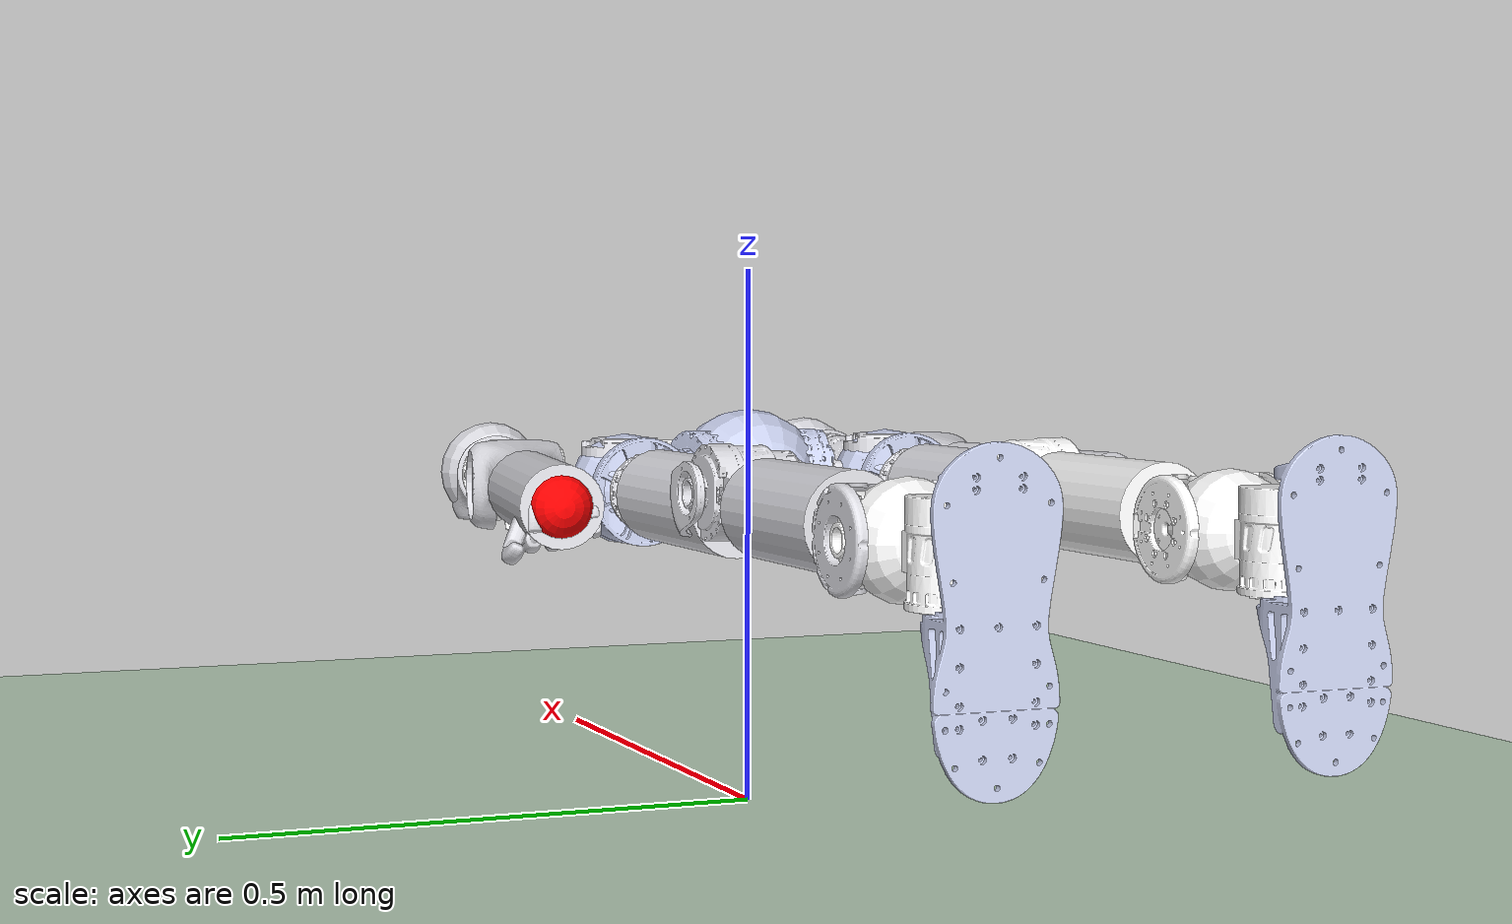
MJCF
<mujoco model="phybot_c2">
  <compiler angle="radian" meshdir="meshes" autolimits="true"/>
  <option timestep="0.002" iterations='10' solver='PGS' gravity='0 0 -9.81'>
  </option>
  <size njmax="500" nconmax="100" />
  <default>
      <geom  condim='4' solref='0.001 2' friction='1.0 0.5 0.5'/>
      <equality solref='0.001 2'/>
  </default>
  <visual>
      <quality shadowsize='4096'/>
      <map force="0.1" zfar="30" znear='0.05'/>
      <rgba haze="0.15 0.25 0.35 1"/>
      <global offwidth="2560" offheight="1440" elevation="-20" azimuth="120"/>
  </visual>
  <default>
      <default class="phybot_c2">
          <joint damping="1" armature="0.1"/>
          <default class="visual">
              <geom type="mesh" contype="0" conaffinity="0" group="2" />
          </default>
          <default class="collision">
              <geom group="3" mass="0" density="0" friction="1.0 0.5 0.5" />
              <default class="base_collision">
                  <geom type="capsule" size=".014" />
          </default>
          </default>
          <site size="0.001" rgba="0.5 0.5 0.5 0.3" group="4"/>
      </default>
  </default>
  <asset>
      <texture type="skybox" builtin="gradient" rgb1=".3 .5 .7" rgb2="0 0 0" width="32" height="512"/>
      <texture name="body" type="cube" builtin="flat" mark="cross" width="128" height="128" rgb1="0.8 0.6 0.4" rgb2="0.8 0.6 0.4" markrgb="1 1 1" random="0.01"/>
      <material name="body" texture="body" texuniform="true" rgba="0.8 0.6 .4 1"/>
      <texture name="grid" type="2d" builtin="checker" width="512" height="512" rgb1=".1 .2 .3" rgb2=".2 .3 .4"/>
      <material name="grid" texture="grid" texrepeat="1 1" texuniform="true" reflectance="0.02"/>
  </asset>
  <asset>
    <mesh name="base_link" file="base_link.STL"/>
    <mesh name="left_hip_pitch" file="left_hip_pitch.STL"/>
    <mesh name="left_hip_roll" file="left_hip_roll.STL"/>
    <mesh name="left_hip_yaw" file="left_hip_yaw.STL"/>
    <mesh name="left_knee" file="left_knee.STL"/>
    <mesh name="left_ankle_pitch" file="left_ankle_pitch.STL"/>
    <mesh name="left_ankle_roll" file="left_ankle_roll.STL"/>
    <mesh name="right_hip_pitch" file="right_hip_pitch.STL"/>
    <mesh name="right_hip_roll" file="right_hip_roll.STL"/>
    <mesh name="right_hip_yaw" file="right_hip_yaw.STL"/>
    <mesh name="right_knee" file="right_knee.STL"/>
    <mesh name="right_ankle_pitch" file="right_ankle_pitch.STL"/>
    <mesh name="right_ankle_roll" file="right_ankle_roll.STL"/>
    <mesh name="waist_yaw" file="waist_yaw.STL"/>
    <mesh name="torso" file="torso.STL"/>
    <mesh name="neck_yaw" file="neck_yaw.STL"/>
    <mesh name="neck_pitch" file="neck_pitch.STL"/>
    <mesh name="left_shoulder_pitch" file="left_shoulder_pitch.STL"/>
    <mesh name="left_shoulder_roll" file="left_shoulder_roll.STL"/>
    <mesh name="left_shoulder_yaw" file="left_shoulder_yaw.STL"/>
    <mesh name="left_elbow_pitch" file="left_elbow_pitch.STL"/>
    <mesh name="right_shoulder_pitch" file="right_shoulder_pitch.STL"/>
    <mesh name="right_shoulder_roll" file="right_shoulder_roll.STL"/>
    <mesh name="right_shoulder_yaw" file="right_shoulder_yaw.STL"/>
    <mesh name="right_elbow_pitch" file="right_elbow_pitch.STL"/>
    <texture builtin="gradient" height="100" rgb1=".4 .5 .6" rgb2="0 0 0" type="skybox" width="100"/>
    <texture name="texplane" type="2d" builtin="checker" rgb1=".2 .3 .4" rgb2=".1 0.15 0.2" width="100" height="100"/>
    <material name="MatPlane" reflectance="0.5" texture="texplane" texrepeat="1 1" texuniform="true"/>
  </asset>

  <worldbody>

    <geom name="floor" friction="1 .5 .5" pos="0 0 0.0" size="50 50 0.125" type="plane" material="MatPlane" condim="3" conaffinity="1" contype="1" group="2" rgba="0.8 0.9 0.8 1"></geom>
    <light cutoff="100" diffuse="1 1 1" dir="-0 0 -1.3" directional="true" exponent="1" pos="0 0 1.3" specular=".1 .1 .1" castshadow="false"/>
    <body name="base_link" pos="0 -0.0 0.3" euler="0 1.5708 0" childclass="phybot_c2" >

      <inertial pos="-0.00024439 -5.2676e-07 0.024482" quat="0.999993 4.23739e-06 0.00376009 -1.59331e-08" mass="3.2436" diaginertia="0.0145507 0.0120128 0.00611311"/>
      <freejoint name="base_link"/>
      <geom name="base_link_visual" type="mesh" contype="0" conaffinity="0" group="1" density="0" rgba="0.79216 0.81961 0.93333 1" mesh="base_link"/>
      <geom name="base_link_collision" type="sphere" rgba="0.79216 0.81961 0.93333 1" size="0.07" pos="0 0 0.0"/>

      <body name="left_hip_pitch" pos="0 0.062831 -0.011079" quat="0.996195 -0.0871543 0 0">
        <inertial pos="-0.0068877 0.061463 -2.976e-05" quat="0.367644 0.602703 -0.258198 0.659485" mass="0.91042" diaginertia="0.00112874 0.000934659 0.000828387"/>
        <joint name="left_hip_pitch" pos="0 0 0" axis="0 1 0" range="-3.05 2.09" actuatorfrcrange="-200 200"/>
        <geom name="left_hip_pitch_visual" type="mesh" contype="0" conaffinity="0" group="1" density="0" rgba="0.8902 0.8902 0.91373 1" mesh="left_hip_pitch"/>

        <body name="left_hip_roll" pos="0 0.0695 0" quat="0.996195 0.0871543 0 0">
          <inertial pos="0.016679 4.1639e-06 -0.027771" quat="0.942743 0.000219041 -0.333521 -0.000387685" mass="0.23681" diaginertia="0.000356717 0.00029702 0.000232613"/>
          <joint name="left_hip_roll" pos="0 0 0" axis="1 0 0" range="-0.44 3.05" actuatorfrcrange="-80 80"/>
          <geom name="left_hip_roll_visual" type="mesh" contype="0" conaffinity="0" group="1" density="0" rgba="0.79216 0.81961 0.93333 1" mesh="left_hip_roll"/>
          <geom name="left_hip_roll_collision" type="sphere" rgba="0.79216 0.81961 0.93333 1" size="0.05" pos="0 0 -0.0"/>

          <body name="left_hip_yaw" pos="0 0 -0.059">
            <inertial pos="-0.000459194 0.000394776 -0.0628997" quat="0.999918 0.00805423 0.00871723 0.00482246" mass="1.00442" diaginertia="0.00398001 0.00385881 0.000600058"/>
            <joint name="left_hip_yaw" pos="0 0 0" axis="0 0 1" range="-2.53 2.53" actuatorfrcrange="-58 58"/>
            <geom name="left_hip_yaw_visual" type="mesh" contype="0" conaffinity="0" group="1" density="0" rgba="0.890196 0.890196 0.913725 1" mesh="left_hip_yaw"/>
            <geom name="left_hip_yaw_collision" type="cylinder" rgba="0.890196 0.890196 0.913725 1" size="0.04 0.09" pos="0 0 -0.12"/>

            <body name="left_knee" pos="-0.015 0 -0.22">
              <inertial pos="0.00690022 -0.00119037 -0.0724208" quat="0.99959 0.00551972 -0.0280404 -0.00190095" mass="1.35068" diaginertia="0.0154112 0.0150837 0.00136788"/>
              <joint name="left_knee" pos="0 0 0" axis="0 1 0" range="-0.05 2.36" actuatorfrcrange="-80 80"/>
              <geom name="left_knee_visual" type="mesh" contype="0" conaffinity="0" group="1" density="0" rgba="0.866667 0.866667 0.890196 1" mesh="left_knee"/>
              <geom name="left_knee_collision" type="cylinder" rgba="0.866667 0.866667 0.890196 1" size="0.04 0.08" pos="0.01 0 -0.13"/>

              <body name="left_ankle_pitch" pos="0.014708 0 -0.279">
                <inertial pos="0.00164957 -0.00318301 -0.0458428" quat="0.720007 0.0141704 -0.0387847 0.692737" mass="1.55163" diaginertia="0.00395688 0.00395467 0.000888985"/>
                <joint name="left_ankle_pitch" pos="0 0 0" axis="0 1 0" range="-1.57 1.57" actuatorfrcrange="-58 58"/>
                <geom name="left_ankle_pitch_visual" type="mesh" contype="0" conaffinity="0" group="1" density="0" rgba="1 1 1 1" mesh="left_ankle_pitch"/>
                <geom name="left_ankle_pitch_collision" type="sphere" rgba="1 1 1 1" size="0.045" pos="0 0 -0.018"/>

                <body name="left_ankle_roll" pos="0.00029206 0 -0.09">
                  <inertial pos="0.05041 1.88535e-07 -0.027486" quat="0 0.704858 0 0.709349" mass="0.38801" diaginertia="0.00166203 0.00154222 0.000277934"/>
                  <joint name="left_ankle_roll" pos="0 0 0" axis="1 0 0" range="-1.13 1.13" actuatorfrcrange="-58 58"/>
                  <geom name="left_ankle_roll_collision" type="mesh" pos="0 0 -0.02" rgba="0.792157 0.819608 0.933333 1" mesh="left_ankle_roll"/>
                  \

                  <body name="left_heel_keypoint" pos="-0.1 0 -0.05">
                  </body>

                  <body name="left_foot_keypoint" pos="-0.0 0 -0.05">
                  </body>
                  <body name="left_toe_keypoint" pos="0.14 0 -0.05">
                  </body>
                </body>

              </body>

            </body>

          </body>

        </body>

      </body>

      <body name="right_hip_pitch" pos="0 -0.062831 -0.011079" quat="0.996195 0.0871543 0 0">
        <inertial pos="-0.00688772 -0.0614633 2.9735e-05" quat="0.604637 0.368786 -0.657391 0.257386" mass="0.910417" diaginertia="0.00112875 0.000934664 0.000828388"/>
        <joint name="right_hip_pitch" pos="0 0 0" axis="0 1 0" range="-3.05 2.09" actuatorfrcrange="-200 200"/>
        <geom name="right_hip_pitch_visual"    type="mesh" contype="0" conaffinity="0" group="1" density="0" rgba="0.890196 0.890196 0.913725 1" mesh="right_hip_pitch"/>

        <body name="right_hip_roll" pos="0 -0.0695 0" quat="0.996195 -0.0871543 0 0">
          <inertial pos="0.0166791 4.00953e-06 -0.0277714" quat="0.942744 0.000217144 -0.333517 -0.000385613" mass="0.236809" diaginertia="0.000356719 0.00029702 0.000232614"/>
          <joint name="right_hip_roll" pos="0 0 0" axis="1 0 0" range="-3.05 0.44" actuatorfrcrange="-80 80"/>
          <geom name="right_hip_roll_visual"    type="mesh" contype="0" conaffinity="0" group="1" density="0" rgba="0.792157 0.819608 0.933333 1" mesh="right_hip_roll"/>
          <geom name="right_hip_roll_collision" type="sphere" rgba="0.792157 0.819608 0.933333 1" size="0.05" pos="0 0 -0.0"/>

          <body name="right_hip_yaw" pos="0 0 -0.056">
            <inertial pos="-0.000459238 -0.000395081 -0.0661388" quat="0.999919 -0.00798709 0.00864289 -0.00483433" mass="1.00443" diaginertia="0.0040263 0.0039051 0.000600063"/>
            <joint name="right_hip_yaw" pos="0 0 0" axis="0 0 1" range="-2.53 2.53" actuatorfrcrange="-58 58"/>
            <geom name="right_hip_yaw_visual"    type="mesh" contype="0" conaffinity="0" group="1" density="0" rgba="0.890196 0.890196 0.913725 1" mesh="right_hip_yaw"/>
            <geom name="right_hip_yaw_collision" type="cylinder" rgba="0.890196 0.890196 0.913725 1" size="0.04 0.09" pos="0 0 -0.12"/>

            <body name="right_knee" pos="-0.015 0 -0.223">
              <inertial pos="0.00695884 0.00119035 -0.0724208" quat="0.999576 -0.00552526 -0.0285095 0.00206248" mass="1.35068" diaginertia="0.0154127 0.0150849 0.00136764"/>
              <joint name="right_knee" pos="0 0 0" axis="0 1 0" range="-0.05 2.36" actuatorfrcrange="-80 80"/>
              <geom name="right_knee_visual"    type="mesh" contype="0" conaffinity="0" group="1" density="0" rgba="1 1 1 1" mesh="right_knee"/>
              <geom name="right_knee_collision" type="cylinder" rgba="1 1 1 1" size="0.04 0.08" pos="0.01 0 -0.13"/>

              <body name="right_ankle_pitch" pos="0.015 0 -0.279">
                <inertial pos="0.00164662 0.00318309 -0.0458428" quat="0.693183 -0.0387686 0.0141704 0.719579" mass="1.55163" diaginertia="0.00395653 0.00395465 0.00088865"/>
                <joint name="right_ankle_pitch" pos="0 0 0" axis="0 1 0" range="-1.57 1.57" actuatorfrcrange="-58 58"/>
                <geom name="right_ankle_pitch_visual"    type="mesh" contype="0" conaffinity="0" group="1" density="0" rgba="1 1 1 1" mesh="right_ankle_pitch"/>
                <geom name="right_ankle_pitch_collision" type="sphere" rgba="1 1 1 1" size="0.045" pos="0 0 -0.018"/>

                <body name="right_ankle_roll" pos="0 0 -0.09">
                  <inertial pos="0.0519608 -8.08718e-08 -0.0273831" quat="0 0.704249 0 0.709953" mass="0.397122" diaginertia="0.00170518 0.00158339 0.000280517"/>
                  <joint name="right_ankle_roll" pos="0 0 0" axis="1 0 0" range="-1.13 1.13" actuatorfrcrange="-58 58"/>
                  <geom name="right_ankle_roll_collision" pos="0.0 0.0 -0.02" type="mesh" rgba="0.792157 0.819608 0.933333 1" mesh="right_ankle_roll"/>

                  <body name="right_heel_keypoint" pos="-0.1 0 -0.05">
                  </body>

                  <body name="right_foot_keypoint" pos="-0.0 0 -0.05">
                  </body>
                  <body name="right_toe_keypoint" pos="0.14 0 -0.05">
                  </body>
                </body>

              </body>

            </body>

          </body>

        </body>

      </body>

      <body name="waist_yaw" pos="0 0 0.146">
        <inertial pos="0.000266551 1.54533e-08 0.0161369" quat="0.495747 0.495747 -0.504217 0.504217" mass="0.209173" diaginertia="0.000478773 0.000383208 0.000111742"/>
        <joint name="waist_yaw" pos="0 0 0" axis="0 0 1" range="-2.62 2.62" actuatorfrcrange="-58 58"/>
        <geom name="waist_yaw_visual"    type="mesh" contype="0" conaffinity="0" group="1" density="0" rgba="0.901961 0.901961 0.901961 1" mesh="waist_yaw"/>

          <body name="left_shoulder_pitch" pos="0 0.105 0.113">
            <inertial pos="0.00237654 0.06439 -7.26662e-08" quat="0.518984 0.480279 -0.518972 0.480266" mass="0.827963" diaginertia="0.00060543 0.000526296 0.000456794"/>
            <joint name="left_shoulder_pitch" pos="0 0 0" axis="0 1 0" range="-3.58 2.01" actuatorfrcrange="-58 58"/>
            <geom name="left_shoulder_pitch_visual"    type="mesh" contype="0" conaffinity="0" group="1" density="0" rgba="1 1 0.945098 1" mesh="left_shoulder_pitch"/>

            <body name="left_shoulder_roll" pos="0 0.068 0">
              <inertial pos="0.0163774 0.00380027 -0.0215458" quat="0.937715 0.0820588 0.33629 0.0294263" mass="0.224784" diaginertia="0.000341804 0.000266151 0.000173681"/>
              <joint name="left_shoulder_roll" pos="0 0 0" axis="1 0 0" range="-0.35 3.05" actuatorfrcrange="-58 58"/>
              <geom name="left_shoulder_roll_visual"    type="mesh" contype="0" conaffinity="0" group="1" density="0" rgba="0.866667 0.866667 0.890196 1" mesh="left_shoulder_roll"/>
              <geom name="left_shoulder_roll_collision" type="sphere" rgba="0.866667 0.866667 0.890196 1" size="0.05" pos="0.0 0 0.0"/>

              <body name="left_shoulder_yaw" pos="-0.00052455 0.0085956 -0.048748" quat="0.996195 0.0871543 0 0">
                <inertial pos="-3.44141e-05 -0.000724952 -0.0981352" quat="0.996703 0.0811367 -0.000451202 -0.000171674" mass="1.59289" diaginertia="0.00683808 0.00673927 0.000812023"/>
                <joint name="left_shoulder_yaw" pos="0 0 0" axis="0 0 1" range="-2.53 2.53" actuatorfrcrange="-58 58"/>
                <geom name="left_shoulder_yaw_visual"    type="mesh" contype="0" conaffinity="0" group="1" density="0" rgba="1 1 1 1" mesh="left_shoulder_yaw"/>
                <geom name="left_shoulder_yaw_collision" type="cylinder" rgba="1 1 1 1" size="0.03 0.07" pos="0 0 -0.09"/>

                <body name="left_elbow_pitch" pos="0 0 -0.16">
                  <inertial pos="-0.00190097 0.00502666 -0.147365" quat="0.947591 0.0724999 -0.00842496 -0.311038" mass="0.851992" diaginertia="0.00784763 0.00769217 0.000562646"/>
                  <joint name="left_elbow_pitch" pos="0 0 0" axis="0 1 0" range="-2.36 0" actuatorfrcrange="-9 9"/>
                  <geom name="left_elbow_pitch_visual"    type="mesh" contype="0" conaffinity="0" group="1" density="0" rgba="0.866667 0.866667 0.890196 1" mesh="left_elbow_pitch"/>
                  <geom name="left_elbow_pitch_collision" type="cylinder" rgba="0.866667 0.866667 0.890196 1" size="0.035 0.11" pos="0 0 -0.17"/>

                  <body name="left_wrist_yaw" pos="0 0 -0.27">
                    <geom name="left_wrist_visual" size="0.02" type="sphere" rgba="1.0 0.498039 0.498039 1"/>
                    <site name="left_wrist" type="sphere" pos="0.0 0 0" size="0.028" rgba="1 0 0 1" group="0"/>
                  </body>
                </body>

              </body>

            </body>

          </body>

          <body name="right_shoulder_pitch" pos="0 -0.105 0.113">
            <inertial pos="0.00237647 -0.06439 -2.28412e-06" quat="0.480517 0.518956 -0.479955 0.519068" mass="0.827963" diaginertia="0.00060543 0.000526297 0.000456793"/>
            <joint name="right_shoulder_pitch" pos="0 0 0" axis="0 1 0" range="-3.58 2.01" actuatorfrcrange="-58 58"/>
            <geom name="right_shoulder_pitch_visual"    type="mesh" contype="0" conaffinity="0" group="1" density="0" rgba="1 1 1 1" mesh="right_shoulder_pitch"/>

            <body name="right_shoulder_roll" pos="0 -0.068 0">
              <inertial pos="0.0163763 -0.00379761 -0.0215459" quat="0.937717 -0.0820205 0.336294 -0.0294153" mass="0.224783" diaginertia="0.000341803 0.000266151 0.00017368"/>
              <joint name="right_shoulder_roll" pos="0 0 0" axis="1 0 0" range="-3.05 0.35" actuatorfrcrange="-58 58"/>
              <geom name="right_shoulder_roll_visual"    type="mesh" contype="0" conaffinity="0" group="1" density="0" rgba="0.866667 0.866667 0.890196 1" mesh="right_shoulder_roll"/>
              <geom name="right_shoulder_roll_collision" type="sphere" rgba="0.866667 0.866667 0.890196 1" size="0.05" pos="0.0 0 0.0"/>

              <body name="right_shoulder_yaw" pos="-0.00052455 -0.0085956 -0.048748" quat="0.996195 -0.0871543 0 0">
                <inertial pos="-3.44141e-05 0.000724952 -0.0981352" quat="0.996703 -0.0811367 -0.000451202 0.000171674" mass="1.59289" diaginertia="0.00683808 0.00673927 0.000812023"/>
                <joint name="right_shoulder_yaw" pos="0 0 0" axis="0 0 1" range="-2.53 2.53" actuatorfrcrange="-58 58"/>
                <geom name="right_shoulder_yaw_visual"    type="mesh" contype="0" conaffinity="0" group="1" density="0" rgba="0.890196 0.890196 0.913725 1" mesh="right_shoulder_yaw"/>
                <geom name="right_shoulder_yaw_collision" type="cylinder" rgba="0.890196 0.890196 0.913725 1" size="0.03 0.07" pos="0 0 -0.09"/>

                <body name="right_elbow_pitch" pos="0 0 -0.16">
                  <inertial pos="-0.00190041 -0.00503062 -0.147351" quat="0.947605 -0.0724808 -0.00842657 0.310999" mass="0.852092" diaginertia="0.00784905 0.00769352 0.000562706"/>
                  <joint name="right_elbow_pitch" pos="0 0 0" axis="0 1 0" range="-2.36 0" actuatorfrcrange="-58 58"/>
                  <geom name="right_elbow_pitch_visual"    type="mesh" contype="0" conaffinity="0" group="1" density="0" rgba="0.866667 0.866667 0.890196 1" mesh="right_elbow_pitch"/>
                  <geom name="right_elbow_pitch_collision" type="cylinder" rgba="0.866667 0.866667 0.890196 1" size="0.035 0.11" pos="0 0 -0.17"/>

                    <body name="right_wrist_yaw" pos="0 0 -0.27">
                      <geom name="right_wrist_visual" size="0.02" type="sphere" rgba="1.0 0.498039 0.498039 1"/>
                      <site name="right_wrist" type="sphere" pos="0.0 0 0" size="0.028" rgba="1 0 0 1" group="0"/>
                    </body>

                </body>

              </body>

            </body>

          </body>

      </body>

      <body name="imu_link" pos="0.0 0 0.0">
        <inertial pos="0 0 0" mass="0" diaginertia="0 0 0" />
        <geom class="visual" type="sphere" rgba="0.792157 0.819608 0.933333 1" size="0.02" />
        <site name="site_imu" pos="0.01 0 0" size='0.01 0.01 0.01' group="4"/>
      </body>

    </body>
  </worldbody>

  <actuator>
      <motor name="left_hip_pitch" joint="left_hip_pitch" gear="1" ctrllimited="true" ctrlrange="-160 160" />
      <motor name="left_hip_roll" joint="left_hip_roll" gear="1" ctrllimited="true" ctrlrange="-100 100" />
      <motor name="left_hip_yaw" joint="left_hip_yaw" gear="1" ctrllimited="true" ctrlrange="-90 90" />
      <motor name="left_knee" joint="left_knee" gear="1" ctrllimited="true" ctrlrange="-100 100" />
      <motor name="left_ankle_pitch" joint="left_ankle_pitch" gear="1" ctrllimited="true" ctrlrange="-90.0 90.0" />
      <motor name="left_ankle_roll" joint="left_ankle_roll" gear="1" ctrllimited="true" ctrlrange="-90 90" />

      <motor name="right_hip_pitch" joint="right_hip_pitch" gear="1" ctrllimited="true" ctrlrange="-160 160" />
      <motor name="right_hip_roll" joint="right_hip_roll" gear="1" ctrllimited="true" ctrlrange="-100 100" />
      <motor name="right_hip_yaw" joint="right_hip_yaw" gear="1" ctrllimited="true" ctrlrange="-90 90" />
      <motor name="right_knee" joint="right_knee" gear="1" ctrllimited="true" ctrlrange="-100 100" />
      <motor name="right_ankle_pitch" joint="right_ankle_pitch" gear="1" ctrllimited="true" ctrlrange="-90.0 90.0" />
      <motor name="right_ankle_roll" joint="right_ankle_roll" gear="1" ctrllimited="true" ctrlrange="-90 90" />

      <motor name="waist_yaw" joint="waist_yaw" gear="1" ctrllimited="true" ctrlrange="-90 90" />

      <motor name="left_shoulder_pitch" joint="left_shoulder_pitch" gear="1" ctrllimited="true" ctrlrange="-90 90" />
      <motor name="left_shoulder_roll" joint="left_shoulder_roll" gear="1" ctrllimited="true" ctrlrange="-90 90" />
      <motor name="left_shoulder_yaw" joint="left_shoulder_yaw" gear="1" ctrllimited="true" ctrlrange="-90 90" />
      <motor name="left_elbow_pitch" joint="left_elbow_pitch" gear="1" ctrllimited="true" ctrlrange="-90 90" />

      <motor name="right_shoulder_pitch" joint="right_shoulder_pitch" gear="1" ctrllimited="true" ctrlrange="-90 90" />
      <motor name="right_shoulder_roll" joint="right_shoulder_roll" gear="1" ctrllimited="true" ctrlrange="-90 90" />
      <motor name="right_shoulder_yaw" joint="right_shoulder_yaw" gear="1" ctrllimited="true" ctrlrange="-90 90" />
      <motor name="right_elbow_pitch" joint="right_elbow_pitch" gear="1" ctrllimited="true" ctrlrange="-90 90" />

  </actuator>

  <sensor>
      <framequat name="baselink-quat" objtype="site" objname="site_imu" />
      <velocimeter name="baselink-velocity" site="site_imu" />
      <gyro name="baselink-gyro" site="site_imu" />
      <accelerometer name="baselink-baseAcc" site="site_imu" />
  </sensor>
  <keyframe>
      <key name="home"
      qpos="0 0 0.70
       1 0 0 0
      -0.24 0.026 0.012 0.51 -0.28 0
      -0.24 0.026 0.012 0.51 -0.28 0
       0.0
        0 1.0 -0.1 0 0 -1.0 0 0" />
  </keyframe>

</mujoco>
